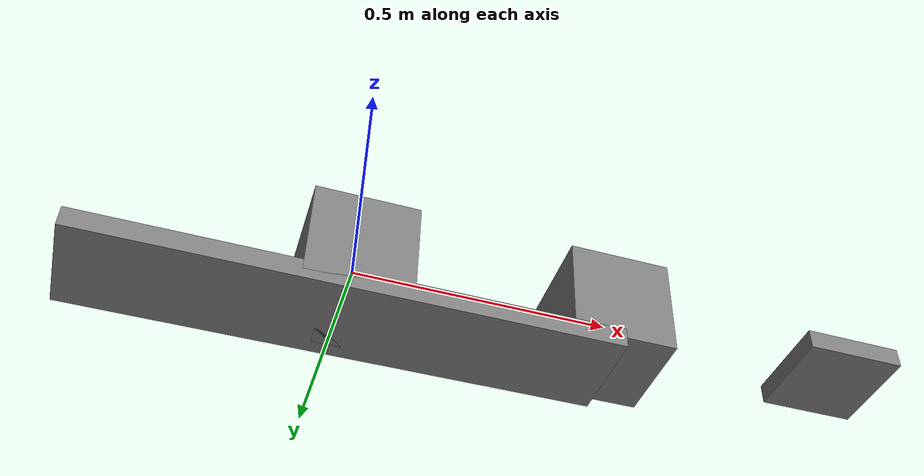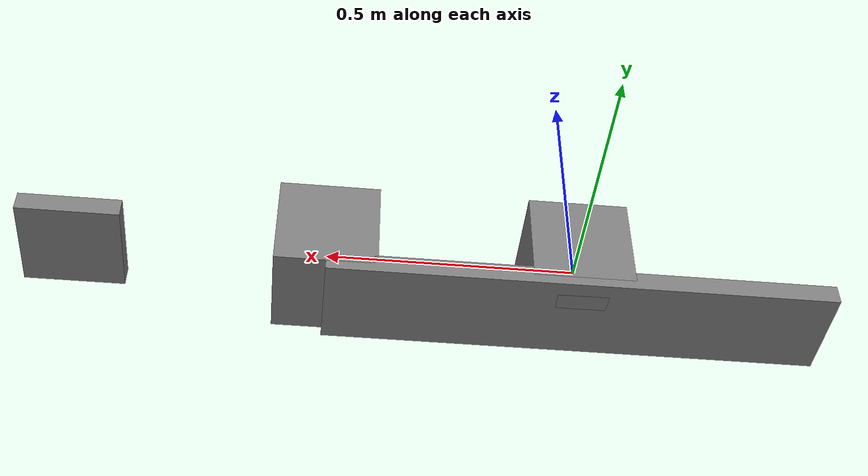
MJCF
<mujoco model="fr5">
    <worldbody>
        <body name="robot">
            <joint name="joint1" type="hinge" axis="0 0 1" />
            <joint name="joint2" type="hinge" axis="0 1 0" />
            <joint name="joint3" type="hinge" axis="1 0 0" />
            <joint name="joint4" type="hinge" axis="0 0 1" />
            <joint name="joint5" type="hinge" axis="0 1 0" />
            <joint name="joint6" type="hinge" axis="1 0 0" />
            <body name="left_arm">
                <geom name="left_hand" type="box" size="0.1 0.1 0.1" pos="0 0 0" />
            </body>
            <body name="right_arm" pos="0.5 0 0">
                <geom name="right_hand" type="box" size="0.1 0.1 0.1" pos="0 0 0" />
            </body>
        </body>
        <body name="board" pos="0 0 -0.1">
            <geom name="board_geom" type="box" size="0.5 0.1 0.02" />
            <body name="slot" pos="0 0.05 0">
                <geom name="slot_geom" type="box" size="0.05 0.02 0.02" />
            </body>
        </body>
        <body name="target" pos="1 0 0">
            <geom name="target_geom" type="box" size="0.1 0.1 0.02" />
        </body>
    </worldbody>
    <actuator>
        <motor joint="joint1" ctrlrange="-1 1" />
        <motor joint="joint2" ctrlrange="-1 1" />
        <motor joint="joint3" ctrlrange="-1 1" />
        <motor joint="joint4" ctrlrange="-1 1" />
        <motor joint="joint5" ctrlrange="-1 1" />
        <motor joint="joint6" ctrlrange="-1 1" />
    </actuator>
</mujoco>
